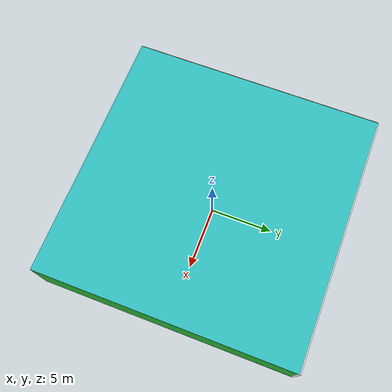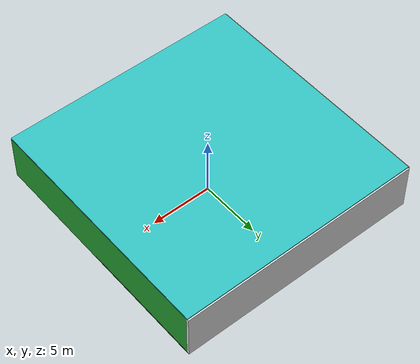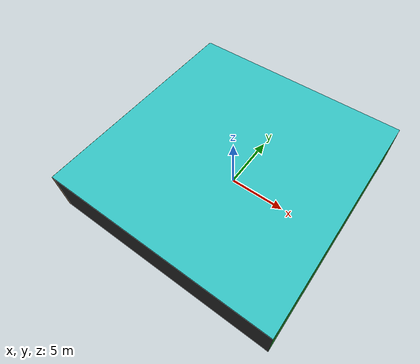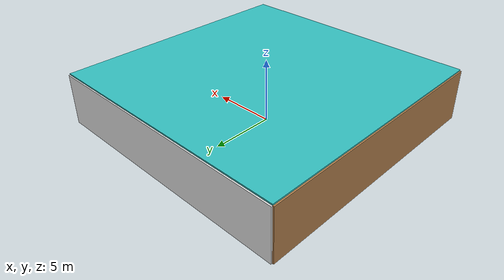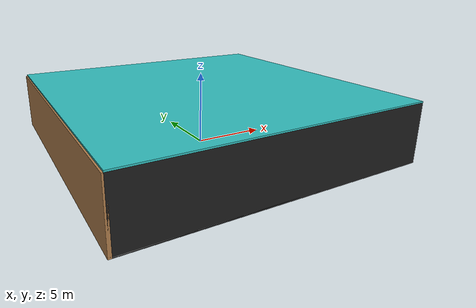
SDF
<sdf version="1.4">
 <world name="default">
  <physics type="ode">
   <max_step_size>0.001</max_step_size>
   <real_time_factor>1</real_time_factor>
   <real_time_update_rate>1000</real_time_update_rate>
   <gravity>0 0 -9.8</gravity>
  </physics>
  <scene><ambient>0.4 0.4 0.4 1</ambient><background>0.7 0.7 0.7 1</background><shadows>1</shadows></scene>
  <model name="Surrounding">
   <static>1</static>
   <link name="Ceiling">
    <collision name="Ceiling_Collision"><geometry><box><size>20 20 0.1</size></box></geometry></collision>
    <visual name="Ceiling_Visual">
     <geometry><box><size>20 20 0.1</size></box></geometry>
     <material>
      <script><uri>file://media/materials/scripts/gazebo.material</uri><name>Gazebo/TurquoiseGlow</name></script>
     </material>
    </visual>
    <pose>0 0 4.05 0 0 0</pose>
   </link>
   <link name="Wall_South">
    <collision name="Wall_South_Collision">
     <geometry><box><size>20 0 4</size></box></geometry>
     <pose>0 0 2 0 -0 0</pose>
    </collision>
    <visual name="Wall_South_Visual">
     <pose>0 0 2 0 -0 0</pose>
     <geometry><box><size>20 0 4</size></box></geometry>
     <material>
      <script><uri>file://media/materials/scripts/gazebo.material</uri><name>Gazebo/FlatBlack</name></script>
     </material>
    </visual>
    <velocity_decay><linear>0</linear><angular>0</angular></velocity_decay>
    <pose>0 -10 0 0 -0 0</pose>
   </link>
   <link name="Wall_East">
    <collision name="Wall_21_Collision">
     <geometry><box><size>20 0 4</size></box></geometry>
     <pose>0 0 2 0 -0 0</pose>
    </collision>
    <visual name="Wall_21_Visual">
     <pose>0 0 2 0 -0 0</pose>
     <geometry><box><size>20 0 4</size></box></geometry>
     <material>
      <script><uri>file://media/materials/scripts/gazebo.material</uri><name>Gazebo/Green</name></script>
     </material>
    </visual>
    <velocity_decay><linear>0</linear><angular>0</angular></velocity_decay>
    <pose>10 0 0 0 -0 1.5708</pose>
   </link>
   <link name="Wall_North">
    <collision name="Wall_22_Collision">
     <geometry><box><size>20 0.2 4</size></box></geometry>
     <pose>0 0 2 0 -0 0</pose>
    </collision>
    <visual name="Wall_22_Visual">
     <pose>0 0 2 0 -0 0</pose>
     <geometry><box><size>20 0.2 4</size></box></geometry>
     <material>
      <script><uri>file://media/materials/scripts/gazebo.material</uri><name>Gazebo/WhiteGlow</name></script>
     </material>
    </visual>
    <velocity_decay><linear>0</linear><angular>0</angular></velocity_decay>
    <pose>0 10 0 0 -0 0</pose>
   </link>
   <link name="Wall_West">
    <collision name="Wall_23_Collision">
     <geometry><box><size>20 0.2 4</size></box></geometry>
     <pose>0 0 2 0 -0 0</pose>
    </collision>
    <visual name="Wall_23_Visual">
     <pose>0 0 2 0 -0 0</pose>
     <geometry><box><size>20 0.2 4</size></box></geometry>
     <material>
      <script><uri>file://media/materials/scripts/gazebo.material</uri><name>Gazebo/WoodFloor</name></script>
     </material>
    </visual>
    <velocity_decay><linear>0</linear><angular>0</angular></velocity_decay>
    <pose>-10 0 0 0 0 -1.5708</pose>
   </link>
   <link name="Ground_link">
    <collision name="collision">
     <pose>0 0 .05 0 -0 0</pose>
     <geometry><box><size>20 20 0.1</size></box></geometry>
    </collision>
    <visual name="visual">
     <pose>0 0 .05 0 -0 0</pose>
     <geometry><box><size>20 20 0.1</size></box></geometry>
     <material>
      <script><uri>file://media/materials/scripts/gazebo.material</uri><name>Gazebo/Road</name></script>
     </material>
    </visual>
   </link>
   <static>1</static>
  </model>
  <spherical_coordinates>
   <surface_model>EARTH_WGS84</surface_model>
   <latitude_deg>0</latitude_deg>
   <longitude_deg>0</longitude_deg>
   <elevation>0</elevation>
   <heading_deg>0</heading_deg>
  </spherical_coordinates>
  <light name="lightball_0" type="diffuse">
   <diffuse>0.8 0.8 0.8 1</diffuse>
   <specular>0.2 0.2 0.2 1</specular>
   <attenuation>
    <range>100</range>
    <constant>0.7</constant>
    <linear>0.01</linear>
    <quadratic>0.001</quadratic>
   </attenuation>
   <direction>-0.5 0.1 -0.9</direction>
   <pose>-8.96706293977 -9.09460813198 3.81889210039 0 0 0</pose>
  </light>
  <light name="lightball_1" type="diffuse">
   <diffuse>0.8 0.8 0.8 1</diffuse>
   <specular>0.2 0.2 0.2 1</specular>
   <attenuation>
    <range>100</range>
    <constant>0.7</constant>
    <linear>0.01</linear>
    <quadratic>0.001</quadratic>
   </attenuation>
   <direction>-0.5 0.1 -0.9</direction>
   <pose>-3.53070278449 3.92491244542 1.75254887403 0 0 0</pose>
  </light>
  <light name="lightball_2" type="diffuse">
   <diffuse>0.8 0.8 0.8 1</diffuse>
   <specular>0.2 0.2 0.2 1</specular>
   <attenuation>
    <range>100</range>
    <constant>0.7</constant>
    <linear>0.01</linear>
    <quadratic>0.001</quadratic>
   </attenuation>
   <direction>-0.5 0.1 -0.9</direction>
   <pose>-6.82121636998 -4.67212687285 3.42113298356 0 0 0</pose>
  </light>
  <light name="lightball_3" type="diffuse">
   <diffuse>0.8 0.8 0.8 1</diffuse>
   <specular>0.2 0.2 0.2 1</specular>
   <attenuation>
    <range>100</range>
    <constant>0.7</constant>
    <linear>0.01</linear>
    <quadratic>0.001</quadratic>
   </attenuation>
   <direction>-0.5 0.1 -0.9</direction>
   <pose>4.2144064796 -1.0463434905 2.79681586238 0 0 0</pose>
  </light>
  <light name="lightball_4" type="diffuse">
   <diffuse>0.8 0.8 0.8 1</diffuse>
   <specular>0.2 0.2 0.2 1</specular>
   <attenuation>
    <range>100</range>
    <constant>0.7</constant>
    <linear>0.01</linear>
    <quadratic>0.001</quadratic>
   </attenuation>
   <direction>-0.5 0.1 -0.9</direction>
   <pose>0.353820682975 0.200869261558 1.7869680597 0 0 0</pose>
  </light>
  <light name="lightball_5" type="diffuse">
   <diffuse>0.8 0.8 0.8 1</diffuse>
   <specular>0.2 0.2 0.2 1</specular>
   <attenuation>
    <range>100</range>
    <constant>0.7</constant>
    <linear>0.01</linear>
    <quadratic>0.001</quadratic>
   </attenuation>
   <direction>-0.5 0.1 -0.9</direction>
   <pose>-8.513505095 -8.56868514932 3.06443466525 0 0 0</pose>
  </light>
  <light name="lightball_6" type="diffuse">
   <diffuse>0.8 0.8 0.8 1</diffuse>
   <specular>0.2 0.2 0.2 1</specular>
   <attenuation>
    <range>100</range>
    <constant>0.7</constant>
    <linear>0.01</linear>
    <quadratic>0.001</quadratic>
   </attenuation>
   <direction>-0.5 0.1 -0.9</direction>
   <pose>-8.91294084797 1.35781204793 0.869583395683 0 0 0</pose>
  </light>
  <light name="lightball_7" type="diffuse">
   <diffuse>0.8 0.8 0.8 1</diffuse>
   <specular>0.2 0.2 0.2 1</specular>
   <attenuation>
    <range>100</range>
    <constant>0.7</constant>
    <linear>0.01</linear>
    <quadratic>0.001</quadratic>
   </attenuation>
   <direction>-0.5 0.1 -0.9</direction>
   <pose>2.74509143524 -6.7405034629 2.13510037731 0 0 0</pose>
  </light>
  <light name="lightball_8" type="diffuse">
   <diffuse>0.8 0.8 0.8 1</diffuse>
   <specular>0.2 0.2 0.2 1</specular>
   <attenuation>
    <range>100</range>
    <constant>0.7</constant>
    <linear>0.01</linear>
    <quadratic>0.001</quadratic>
   </attenuation>
   <direction>-0.5 0.1 -0.9</direction>
   <pose>7.32163036762 9.41701320677 0.505239681673 0 0 0</pose>
  </light>
  <light name="lightball_9" type="diffuse">
   <diffuse>0.8 0.8 0.8 1</diffuse>
   <specular>0.2 0.2 0.2 1</specular>
   <attenuation>
    <range>100</range>
    <constant>0.7</constant>
    <linear>0.01</linear>
    <quadratic>0.001</quadratic>
   </attenuation>
   <direction>-0.5 0.1 -0.9</direction>
   <pose>-3.7714350188 5.08599211515 2.25557523391 0 0 0</pose>
  </light>
  <include>
   <uri>model://construction_cone</uri>
   <pose>-7.28258230857 -2.03528004663 0 0 0 0.519783014228</pose>
  </include>
  <include><uri>model://cabinet</uri><pose>-4.49378153878 7.13624786791 0 0 0 0.08962332798</pose></include>
  <include><uri>model://cabinet</uri><pose>1.16552584448 -2.07827652609 0 0 0 2.19912601701</pose></include>
  <include>
   <uri>model://robocup_3Dsim_goal</uri>
   <pose>0.812106990847 8.29185213501 0 0 0 0.642095978271</pose>
  </include>
  <include><uri>model://cabinet</uri><pose>4.08712086418 1.70272119063 0 0 0 3.1151694428</pose></include>
  <include><uri>model://cabinet</uri><pose>8.24715096118 7.89820455966 0 0 0 1.0677840382</pose></include>
 </world>
</sdf>

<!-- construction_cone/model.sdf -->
<sdf version="1.5">
  <model name="Construction Cone">
    <link name="link">
      <collision name="collision">
        <geometry>
          <mesh>
            <scale>10 10 10</scale>
            <uri>file://isr-testbed/construction_cone/meshes/construction_cone.dae</uri>
          </mesh>
        </geometry>
      </collision>
      <visual name="visual">
        <geometry>
          <mesh>
            <scale>10 10 10</scale>
            <uri>file://isr-testbed/construction_cone/meshes/construction_cone.dae</uri>
          </mesh>
        </geometry>
      </visual>
    </link>
  </model>
</sdf>

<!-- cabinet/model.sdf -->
<sdf version="1.5">
  <model name="cabinet">
    <static>true</static>
    <link name="cabinet_bottom_plate">
      <inertial>
        <pose>0 0 -1 0 0 0</pose>
        <inertia>
          <ixx>2.050000</ixx>
          <ixy>0</ixy>
          <ixz>0</ixz>
          <iyy>2.050000</iyy>
          <iyz>0</iyz>
          <izz>2.050000</izz>
        </inertia>
        <mass>25.000000</mass>
      </inertial>
      <collision name="cabinet_bottom_plate_geom">
        <pose>0 0 0.010000 0 0 0</pose>
        <geometry>
          <box>
            <size>0.450000 0.450000 0.020000</size>
          </box>
        </geometry>
      </collision>
      <visual name="cabinet_bottom_plate_geom_visual">
        <pose>0 0 0.010000 0 0 0</pose>
        <geometry>
          <box>
            <size>0.450000 0.450000 0.020000</size>
          </box>
        </geometry>
        <material>
          <script>
            <uri>model://media/materials/scripts/gazebo.material</uri>
            <name>Gazebo/Wood</name>
          </script>
        </material>
      </visual>
      <collision name="cabinet_bottom_plate_geom_cabinet_back_plate">
        <pose>0.235000 0 0.510000 0 0 0</pose>
        <geometry>
          <box>
            <size>0.020000 0.450000 1.020000</size>
          </box>
        </geometry>
      </collision>
      <visual name="cabinet_bottom_plate_geom_cabinet_back_plate_visual">
        <pose>0.235000 0 0.510000 0 0 0</pose>
        <geometry>
          <box>
            <size>0.020000 0.450000 1.020000</size>
          </box>
        </geometry>
        <material>
          <script>
            <uri>model://media/materials/scripts/gazebo.material</uri>
            <name>Gazebo/Wood</name>
          </script>
        </material>
      </visual>
      <collision name="cabinet_bottom_plate_geom_cabinet_left_plate">
        <pose>0 0.235000 0.510000 0 0 0</pose>
        <geometry>
          <box>
            <size>0.450000 0.020000 1.020000</size>
          </box>
        </geometry>
      </collision>
      <visual name="cabinet_bottom_plate_geom_cabinet_left_plate_visual">
        <pose>0 0.235000 0.510000 0 0 0</pose>
        <geometry>
          <box>
            <size>0.450000 0.020000 1.020000</size>
          </box>
        </geometry>
        <material>
          <script>
            <uri>model://media/materials/scripts/gazebo.material</uri>
            <name>Gazebo/Wood</name>
          </script>
        </material>
      </visual>
      <collision name="cabinet_bottom_plate_geom_cabinet_middle_plate">
        <pose>0 0 0.510000 0 0 0</pose>
        <geometry>
          <box>
            <size>0.450000 0.450000 0.020000</size>
          </box>
        </geometry>
      </collision>
      <visual name="cabinet_bottom_plate_geom_cabinet_middle_plate_visual">
        <pose>0 0 0.510000 0 0 0</pose>
        <geometry>
          <box>
            <size>0.450000 0.450000 0.020000</size>
          </box>
        </geometry>
        <material>
          <script>
            <uri>model://media/materials/scripts/gazebo.material</uri>
            <name>Gazebo/Wood</name>
          </script>
        </material>
      </visual>
      <collision name="cabinet_bottom_plate_geom_cabinet_right_plate">
        <pose>0 -0.235000 0.510000 0 0 0</pose>
        <geometry>
          <box>
            <size>0.450000 0.020000 1.020000</size>
          </box>
        </geometry>
      </collision>
      <visual name="cabinet_bottom_plate_geom_cabinet_right_plate_visual">
        <pose>0 -0.235000 0.510000 0 0 0</pose>
        <geometry>
          <box>
            <size>0.450000 0.020000 1.020000</size>
          </box>
        </geometry>
        <material>
          <script>
            <uri>model://media/materials/scripts/gazebo.material</uri>
            <name>Gazebo/Wood</name>
          </script>
        </material>
      </visual>
      <collision name="cabinet_bottom_plate_geom_cabinet_top_plate">
        <pose>0 0 1.010000 0 0 0</pose>
        <geometry>
          <box>
            <size>0.450000 0.450000 0.020000</size>
          </box>
        </geometry>
      </collision>
      <visual name="cabinet_bottom_plate_geom_cabinet_top_plate_visual">
        <pose>0 0 1.010000 0 0 0</pose>
        <geometry>
          <box>
            <size>0.450000 0.450000 0.020000</size>
          </box>
        </geometry>
        <material>
          <script>
            <uri>model://media/materials/scripts/gazebo.material</uri>
            <name>Gazebo/Wood</name>
          </script>
        </material>
      </visual>
    </link>
  </model>
</sdf>

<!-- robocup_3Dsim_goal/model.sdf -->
<sdf version="1.5">
  <model name="robocup_3d_goal">
    <static>true</static>
    <link name="left_post">
      <pose>0 1.05 0.45 0 0 0</pose>
      <collision name="collision">
        <geometry>
          <cylinder>
            <radius>0.05</radius>
            <length>0.9</length>
          </cylinder>
        </geometry>
      </collision>
      <visual name="visual">
        <geometry>
          <cylinder>
            <radius>0.05</radius>
            <length>0.9</length>
          </cylinder>
        </geometry>
        <material>
          <script>
            <uri>file://media/materials/scripts/gazebo.material</uri>
            <name>Gazebo/ZincYellow</name>
          </script>
        </material>
      </visual>
    </link>
    <link name="left_support_horiz_lower">
      <pose>0.30 1.05 0.01 0 0 0</pose>
      <collision name="collision">
        <geometry>
          <box>
            <size>0.50 0.02 0.02</size>
          </box>
        </geometry>
      </collision>
      <visual name="visual">
        <geometry>
          <box>
            <size>0.50 0.02 0.02</size>
          </box>
        </geometry>
        <material>
          <script>
            <uri>file://media/materials/scripts/gazebo.material</uri>
            <name>Gazebo/White</name>
          </script>
        </material>
      </visual>
    </link>
    <link name="left_support_horiz_upper">
      <pose>0.30 1.05 0.79 0 0 0</pose>
      <collision name="collision">
        <geometry>
          <box>
            <size>0.50 0.02 0.02</size>
          </box>
        </geometry>
      </collision>
      <visual name="visual">
        <geometry>
          <box>
            <size>0.50 0.02 0.02</size>
          </box>
        </geometry>
        <material>
          <script>
            <uri>file://media/materials/scripts/gazebo.material</uri>
            <name>Gazebo/White</name>
          </script>
        </material>
      </visual>
    </link>
    <link name="left_support_vertical">
      <pose>0.56 1.05 0.4 0 1.5708 0</pose>
      <collision name="collision">
        <geometry>
          <box>
            <size>0.80 0.02 0.02</size>
          </box>
        </geometry>
      </collision>
      <visual name="visual">
        <geometry>
          <box>
            <size>0.80 0.02 0.02</size>
          </box>
        </geometry>
        <material>
          <script>
            <uri>file://media/materials/scripts/gazebo.material</uri>
            <name>Gazebo/White</name>
          </script>
        </material>
      </visual>
    </link>
    <link name="right_support_horiz_lower">
      <pose>0.30 -1.05 0.01 0 0 0</pose>
      <collision name="collision">
        <geometry>
          <box>
            <size>0.50 0.02 0.02</size>
          </box>
        </geometry>
      </collision>
      <visual name="visual">
        <geometry>
          <box>
            <size>0.50 0.02 0.02</size>
          </box>
        </geometry>
        <material>
          <script>
            <uri>file://media/materials/scripts/gazebo.material</uri>
            <name>Gazebo/White</name>
          </script>
        </material>
      </visual>
    </link>
    <link name="right_support_horiz_upper">
      <pose>0.30 -1.05 0.79 0 0 0</pose>
      <collision name="collision">
        <geometry>
          <box>
            <size>0.50 0.02 0.02</size>
          </box>
        </geometry>
      </collision>
      <visual name="visual">
        <geometry>
          <box>
            <size>0.50 0.02 0.02</size>
          </box>
        </geometry>
        <material>
          <script>
            <uri>file://media/materials/scripts/gazebo.material</uri>
            <name>Gazebo/White</name>
          </script>
        </material>
      </visual>
    </link>
    <link name="right_support_vertical">
      <pose>0.56 -1.05 0.4 0 1.5708 0</pose>
      <collision name="collision">
        <geometry>
          <box>
            <size>0.80 0.02 0.02</size>
          </box>
        </geometry>
      </collision>
      <visual name="visual">
        <geometry>
          <box>
            <size>0.80 0.02 0.02</size>
          </box>
        </geometry>
        <material>
          <script>
            <uri>file://media/materials/scripts/gazebo.material</uri>
            <name>Gazebo/White</name>
          </script>
        </material>
      </visual>
    </link>
    <link name="center_support_horiz_lower">
      <pose>0.56 0 0.01 0 1.5708 0</pose>
      <collision name="collision">
        <geometry>
          <box>
            <size>0.02 2.08 0.02</size>
          </box>
        </geometry>
      </collision>
      <visual name="visual">
        <geometry>
          <box>
            <size>0.02 2.08 0.02</size>
          </box>
        </geometry>
        <material>
          <script>
            <uri>file://media/materials/scripts/gazebo.material</uri>
            <name>Gazebo/White</name>
          </script>
        </material>
      </visual>
    </link>
    <link name="center_support_horiz_upper">
      <pose>0.56 0 0.79 0 1.5708 0</pose>
      <collision name="collision">
        <geometry>
          <box>
            <size>0.02 2.08 0.02</size>
          </box>
        </geometry>
      </collision>
      <visual name="visual">
        <geometry>
          <box>
            <size>0.02 2.08 0.02</size>
          </box>
        </geometry>
        <material>
          <script>
            <uri>file://media/materials/scripts/gazebo.material</uri>
            <name>Gazebo/White</name>
          </script>
        </material>
      </visual>
    </link>
    <link name="right_post">
      <pose>0 -1.05 0.45 0 0 0</pose>
      <collision name="collision">
        <geometry>
          <cylinder>
            <radius>0.05</radius>
            <length>0.9</length>
          </cylinder>
        </geometry>
      </collision>
      <visual name="visual">
        <geometry>
          <cylinder>
            <radius>0.05</radius>
            <length>0.9</length>
          </cylinder>
        </geometry>
        <material>
          <script>
            <uri>file://media/materials/scripts/gazebo.material</uri>
            <name>Gazebo/ZincYellow</name>
          </script>
        </material>
      </visual>
    </link>
    <link name="crossbar">
      <pose>0 0 0.85 1.57 1.57 0</pose>
      <collision name="collision">
        <geometry>
          <cylinder>
            <radius>0.05</radius>
            <length>2.0</length>
          </cylinder>
        </geometry>
      </collision>
      <visual name="visual">
        <geometry>
          <cylinder>
            <radius>0.05</radius>
            <length>2.0</length>
          </cylinder>
        </geometry>
        <material>
          <script>
            <uri>file://media/materials/scripts/gazebo.material</uri>
            <name>Gazebo/ZincYellow</name>
          </script>
        </material>
      </visual>
    </link>
    <link name="center_net">
      <pose>0.56 0 0.40 0 0 0</pose>
      <collision name="collision">
        <geometry>
          <box>
            <size>0.01 2.1 0.80</size>
          </box>
        </geometry>
      </collision>
      <visual name="visual">
        <geometry>
          <box>
            <size>0.01 2.1 0.80</size>
          </box>
        </geometry>
        <material>
          <script>
            <uri>model://../model_source/models/robocup09_spl_field/materials/scripts/</uri>
            <uri>model://../model_source/models/robocup09_spl_field/materials/textures/</uri>
            <name>RoboCup/Net</name>
          </script>
        </material>
      </visual>
    </link>
    <link name="left_net">
      <pose>0.30 1.05 0.40 0 0 0</pose>
      <collision name="collision">
        <geometry>
          <box>
            <size>0.50 0.01 0.76</size>
          </box>
        </geometry>
      </collision>
      <visual name="visual">
        <geometry>
          <box>
            <size>0.50 0.01 0.76</size>
          </box>
        </geometry>
        <material>
          <script>
            <uri>model://../model_source/models/robocup09_spl_field/materials/scripts/</uri>
            <uri>model://../model_source/models/robocup09_spl_field/materials/textures/</uri>
            <name>RoboCup/Net</name>
          </script>
        </material>
      </visual>
    </link>
    <link name="right_net">
      <pose>0.30 -1.05 0.40 0 0 0</pose>
      <collision name="collision">
        <geometry>
          <box>
            <size>0.50 0.01 0.76</size>
          </box>
        </geometry>
      </collision>
      <visual name="visual">
        <geometry>
          <box>
            <size>0.50 0.01 0.76</size>
          </box>
        </geometry>
        <material>
          <script>
            <uri>model://../model_source/models/robocup09_spl_field/materials/scripts/</uri>
            <uri>model://../model_source/models/robocup09_spl_field/materials/textures/</uri>
            <name>RoboCup/Net</name>
          </script>
        </material>
      </visual>
    </link>
  </model>
</sdf>
